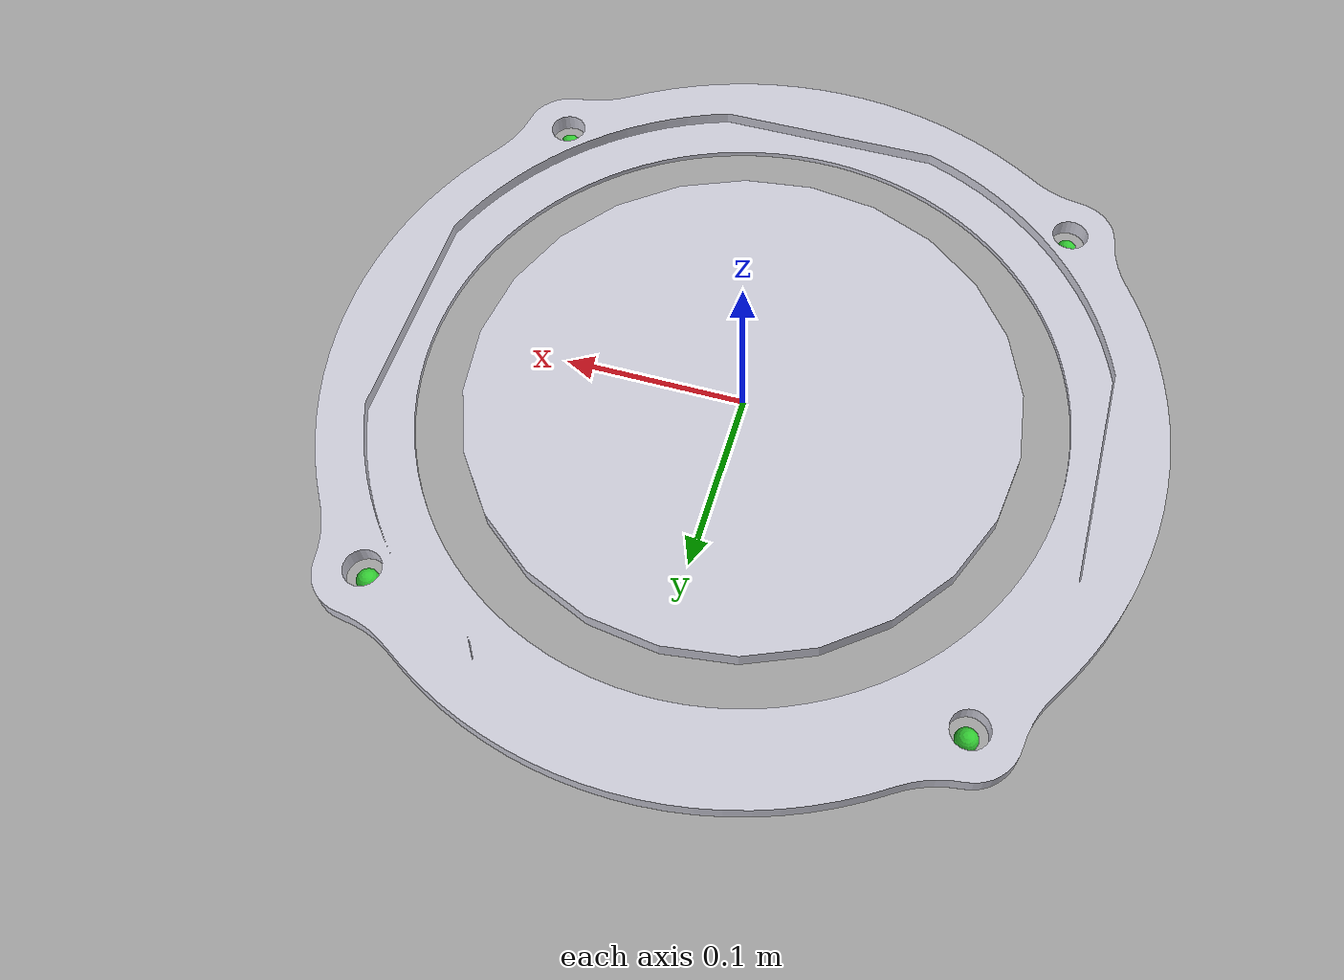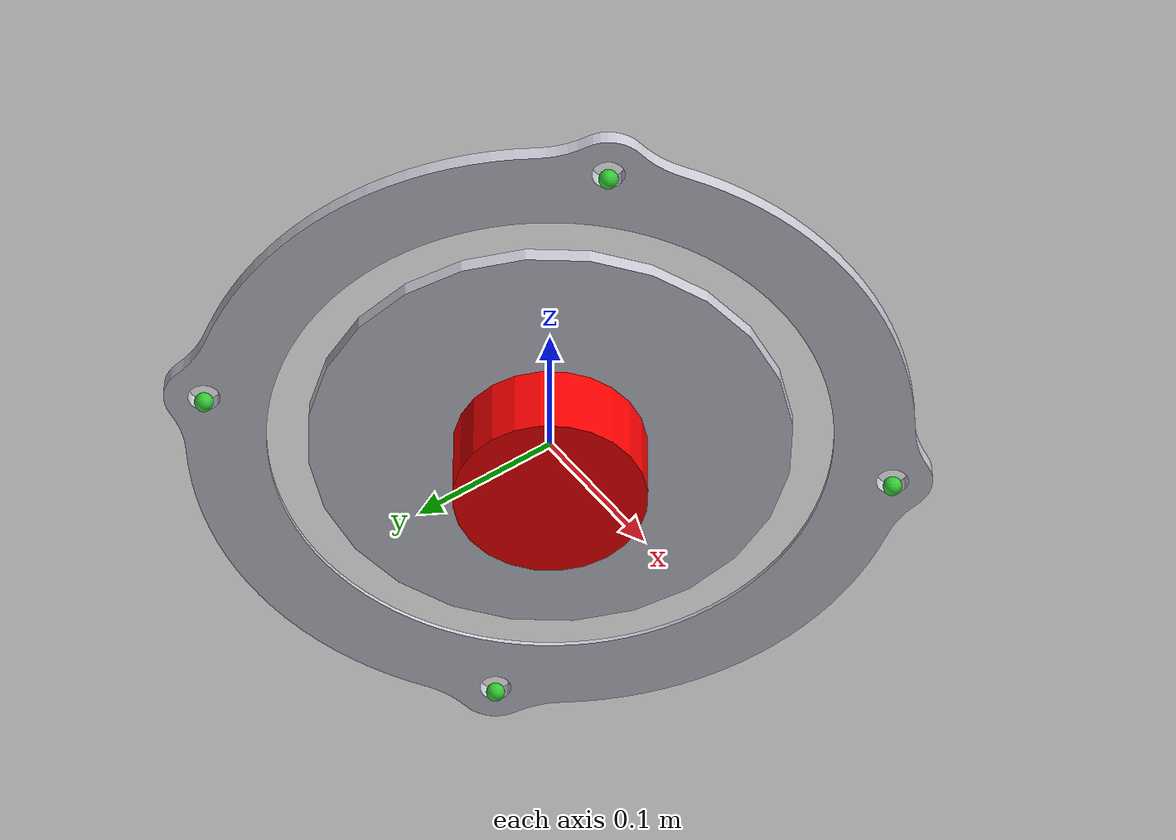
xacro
<?xml version="1.0"?>
<robot name="wafer_stage" xmlns:xacro="http://www.ros.org/wiki/xacro">
  <!-- Params -->
  <xacro:property name="corner" value="0.34"/>       <!-- base half-size (m) -->
  <xacro:property name="wafer_r" value="0.150"/>     <!-- wafer radius (m) -->
  <xacro:property name="anchor_off" value="0.152"/>  <!-- wafer frame anchor offset (m) -->

  <!-- Materials -->
  <material name="silver"><color rgba="0.8 0.8 0.85 1.0"/></material>
  <material name="anchor_color"><color rgba="0.2 0.8 0.2 1.0"/></material>
  <material name="testbed_gray"><color rgba="1.0 0.0 0.0 1.0"/></material>

  <!-- Base and corner posts (CCW from TOP-RIGHT) -->
  <link name="base">
    <inertial>
      <mass value="5.0"/>
      <origin xyz="0 0 0"/>
      <inertia ixx="0.02" iyy="0.02" izz="0.02" ixy="0" ixz="0" iyz="0"/>
    </inertial>
  </link>

  <link name="corner_1"/>
  <link name="corner_2"/>
  <link name="corner_3"/>
  <link name="corner_4"/>

  <joint name="j_c1" type="fixed"><parent link="base"/><child link="corner_1"/><origin xyz="${corner} ${corner} 0"/></joint>
  <joint name="j_c2" type="fixed"><parent link="base"/><child link="corner_2"/><origin xyz="-${corner} ${corner} 0"/></joint>
  <joint name="j_c3" type="fixed"><parent link="base"/><child link="corner_3"/><origin xyz="-${corner} -${corner} 0"/></joint>
  <joint name="j_c4" type="fixed"><parent link="base"/><child link="corner_4"/><origin xyz="${corner} -${corner} 0"/></joint>

  <!-- Planar slides (XY) -->
  <link name="x_axis">
    <inertial>
      <mass value="0.5"/>
      <origin xyz="0 0 0"/>
      <inertia ixx="0.001" iyy="0.001" izz="0.001" ixy="0" ixz="0" iyz="0"/>
    </inertial>
  </link>

  <joint name="x_slide" type="prismatic">
    <parent link="base"/><child link="x_axis"/>
    <axis xyz="1 0 0"/>
    <limit lower="-0.2" upper="0.2" effort="1" velocity="0.5"/>
  </joint>

  <!-- Wafer (moving) -->
  <link name="wafer">
    <visual>
      <geometry><cylinder radius="${wafer_r}" length="0.01"/></geometry>
      <!-- Put wafer top surface at z=0.005 (same plane as frame visual below) -->
      <origin xyz="0 0 0.005"/>
      <material name="silver"/>
    </visual>
    <collision>
      <geometry><cylinder radius="${wafer_r}" length="0.01"/></geometry>
      <origin xyz="0 0 0.005"/>
    </collision>
    <inertial>
      <mass value="0.2"/>
      <origin xyz="0 0 0.005"/>
      <inertia ixx="1e-4" iyy="1e-4" izz="1e-4" ixy="0" ixz="0" iyz="0"/>
    </inertial>
  </link>

  <joint name="y_slide" type="prismatic">
    <parent link="x_axis"/><child link="wafer"/>
    <axis xyz="0 1 0"/>
    <limit lower="-0.2" upper="0.2" effort="1" velocity="0.5"/>
  </joint>

  <!-- Frame (moves with wafer; same z level) -->
  <link name="wafer_frame">
    <visual>
      <geometry>
        <mesh filename="package://wafer_stage_description/meshes/frame_vacuscan.stl" scale="0.001 0.001 0.001"/>
      </geometry>
      <origin xyz="0 0 0.005" rpy="0 0 0"/>
      <material name="silver"/>
    </visual>
    <collision>
      <geometry>
        <mesh filename="package://wafer_stage_description/meshes/frame_vacuscan.stl" scale="0.001 0.001 0.001"/>
      </geometry>
      <origin xyz="0 0 0.005"/>
    </collision>
    <inertial>
      <mass value="0.2"/>
      <origin xyz="0 0 0.005"/>
      <inertia ixx="1e-4" iyy="1e-4" izz="1e-4" ixy="0" ixz="0" iyz="0"/>
    </inertial>
  </link>

  <joint name="wafer_to_wafer_frame" type="fixed">
    <parent link="wafer"/>
    <child link="wafer_frame"/>
    <origin xyz="0 0 0" rpy="0 0 0"/>
  </joint>

  <!-- Test bed: cylinder Ø75 mm, height 50 mm, fixed below base -->
  <link name="test_bed">
    <visual>
      <geometry>
        <cylinder radius="0.06" length="0.05"/>  <!-- Ø75 mm -->
      </geometry>
      <origin xyz="0 0 0"/>
      <material name="testbed_gray"/>
    </visual>
    <collision>
      <geometry>
        <cylinder radius="0.06" length="0.05"/>
      </geometry>
      <origin xyz="0 0 0"/>
    </collision>
    <inertial>
      <mass value="1.0"/>
      <origin xyz="0 0 0"/>
      <inertia ixx="0.001" iyy="0.001" izz="0.001" ixy="0" ixz="0" iyz="0"/>
    </inertial>
  </link>

  <joint name="base_to_test_bed" type="fixed">
    <parent link="base"/>
    <child link="test_bed"/>
    <!-- place test_bed center 25 mm below base so top is flush with base plane -->
    <origin xyz="0 0 -0.025" rpy="0 0 0"/>
  </joint>

  <!-- Frame edge anchors (CCW from TOP-RIGHT) -->
  <link name="wafer_anchor_1"><visual><geometry><sphere radius="0.006"/></geometry><material name="anchor_color"/></visual></link>
  <joint name="wafer_frame_to_anchor_1" type="fixed">
    <parent link="wafer_frame"/><child link="wafer_anchor_1"/>
    <origin xyz="${anchor_off} ${anchor_off} 0.0"/>
  </joint>

  <link name="wafer_anchor_2"><visual><geometry><sphere radius="0.006"/></geometry><material name="anchor_color"/></visual></link>
  <joint name="wafer_frame_to_anchor_2" type="fixed">
    <parent link="wafer_frame"/><child link="wafer_anchor_2"/>
    <origin xyz="-${anchor_off} ${anchor_off} 0.0"/>
  </joint>

  <link name="wafer_anchor_3"><visual><geometry><sphere radius="0.006"/></geometry><material name="anchor_color"/></visual></link>
  <joint name="wafer_frame_to_anchor_3" type="fixed">
    <parent link="wafer_frame"/><child link="wafer_anchor_3"/>
    <origin xyz="-${anchor_off} -${anchor_off} 0.0"/>
  </joint>

  <link name="wafer_anchor_4"><visual><geometry><sphere radius="0.006"/></geometry><material name="anchor_color"/></visual></link>
  <joint name="wafer_frame_to_anchor_4" type="fixed">
    <parent link="wafer_frame"/><child link="wafer_anchor_4"/>
    <origin xyz="${anchor_off} -${anchor_off} 0.0"/>
  </joint>

  <!-- ros2_control hardware description -->
  <ros2_control name="WaferStageSystem" type="system">
    <hardware>
      <plugin>gazebo_ros2_control/GazeboSystem</plugin>
    </hardware>

    <joint name="x_slide">
      <command_interface name="position"/>
      <state_interface name="position"/>
      <state_interface name="velocity"/>
    </joint>

    <joint name="y_slide">
      <command_interface name="position"/>
      <state_interface name="position"/>
      <state_interface name="velocity"/>
    </joint>
  </ros2_control>

  <!-- ros2_control in Gazebo Classic -->
  <gazebo>
    <plugin name="gazebo_ros2_control" filename="libgazebo_ros2_control.so">
      <parameters>package://wafer_stage_gazebo/config/ros2_control.yaml</parameters>
    </plugin>
  </gazebo>
</robot>
